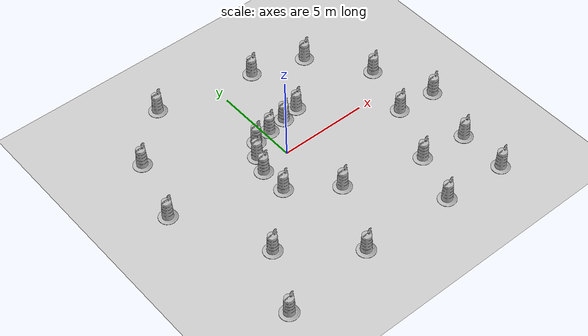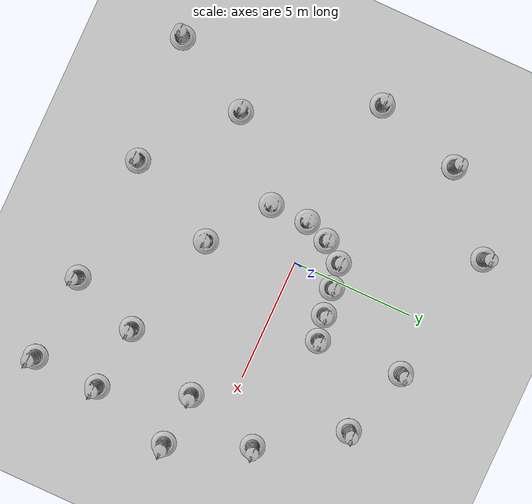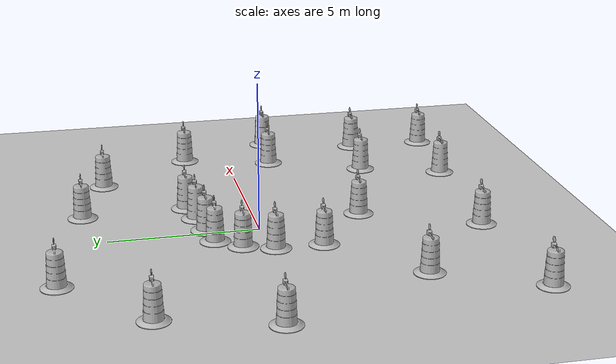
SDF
<sdf version="1.7">
 <world name="default">
  <light name="sun" type="directional">
   <pose>0 0 10 0 -0 0</pose>
   <diffuse>0.8 0.8 0.8 1</diffuse>
   <specular>0.2 0.2 0.2 1</specular>
   <attenuation>
    <range>1000</range>
    <constant>0.9</constant>
    <linear>0.01</linear>
    <quadratic>0.001</quadratic>
   </attenuation>
   <direction>-0.5 0.1 -0.9</direction>
   <spot><inner_angle>0</inner_angle><outer_angle>0</outer_angle><falloff>0</falloff></spot>
  </light>
  <model name="ground_plane">
   <static>1</static>
   <link name="link">
    <collision name="collision">
     <geometry><plane><normal>0 0 1</normal><size>100 100</size></plane></geometry>
     <surface>
      <contact><collide_bitmask>65535</collide_bitmask></contact>
      <friction><ode><mu>100</mu><mu2>50</mu2></ode></friction>
     </surface>
    </collision>
    <visual name="visual">
     <cast_shadows>0</cast_shadows>
     <geometry><plane><normal>0 0 1</normal><size>100 100</size></plane></geometry>
     <material>
      <script><uri>file://media/materials/scripts/gazebo.material</uri><name>Gazebo/Grey</name></script>
     </material>
    </visual>
   </link>
  </model>
  <gravity>0 0 -9.8</gravity>
  <magnetic_field>6e-06 2.3e-05 -4.2e-05</magnetic_field>
  <atmosphere type="adiabatic"/>
  <physics type="ode">
   <max_step_size>0.001</max_step_size>
   <real_time_factor>1</real_time_factor>
   <real_time_update_rate>1000</real_time_update_rate>
  </physics>
  <scene><ambient>0.4 0.4 0.4 1</ambient><background>0.7 0.7 0.7 1</background><shadows>1</shadows></scene>
  <audio><device>default</device></audio>
  <spherical_coordinates>
   <surface_model>EARTH_WGS84</surface_model>
   <latitude_deg>0</latitude_deg>
   <longitude_deg>0</longitude_deg>
   <elevation>0</elevation>
   <heading_deg>0</heading_deg>
  </spherical_coordinates>
  <model name="Construction Barrel">
   <link name="link">
    <inertial>
     <pose>0 0 0.4 0 -0 0</pose>
     <mass>500</mass>
     <inertia><ixx>51.2096</ixx><iyy>51.2096</iyy><izz>25</izz><ixy>0</ixy><ixz>0</ixz><iyz>0</iyz></inertia>
    </inertial>
    <collision name="collision">
     <geometry><mesh><uri>model://construction_barrel/meshes/construction_barrel.dae</uri></mesh></geometry>
    </collision>
    <visual name="visual">
     <geometry><mesh><uri>model://construction_barrel/meshes/construction_barrel.dae</uri></mesh></geometry>
    </visual>
   </link>
   <pose>-0.710863 1.58778 -2e-06 7e-06 -4e-06 -0.074436</pose>
  </model>
  <model name="Construction Barrel_0">
   <link name="link">
    <inertial>
     <pose>0 0 0.4 0 -0 0</pose>
     <mass>500</mass>
     <inertia><ixx>51.2096</ixx><iyy>51.2096</iyy><izz>25</izz><ixy>0</ixy><ixz>0</ixz><iyz>0</iyz></inertia>
    </inertial>
    <collision name="collision">
     <geometry><mesh><uri>model://construction_barrel/meshes/construction_barrel.dae</uri></mesh></geometry>
    </collision>
    <visual name="visual">
     <geometry><mesh><uri>model://construction_barrel/meshes/construction_barrel.dae</uri></mesh></geometry>
    </visual>
   </link>
   <pose>0.292065 1.75063 -5e-06 1e-06 -1.2e-05 0.00801</pose>
  </model>
  <model name="Construction Barrel_1">
   <link name="link">
    <inertial>
     <pose>0 0 0.4 0 -0 0</pose>
     <mass>500</mass>
     <inertia><ixx>51.2096</ixx><iyy>51.2096</iyy><izz>25</izz><ixy>0</ixy><ixz>0</ixz><iyz>0</iyz></inertia>
    </inertial>
    <collision name="collision">
     <geometry><mesh><uri>model://construction_barrel/meshes/construction_barrel.dae</uri></mesh></geometry>
    </collision>
    <visual name="visual">
     <geometry><mesh><uri>model://construction_barrel/meshes/construction_barrel.dae</uri></mesh></geometry>
    </visual>
   </link>
   <pose>1.39934 1.91592 1e-06 3e-06 2e-06 -3.1e-05</pose>
  </model>
  <model name="Construction Barrel_2">
   <link name="link">
    <inertial>
     <pose>0 0 0.4 0 -0 0</pose>
     <mass>500</mass>
     <inertia><ixx>51.2096</ixx><iyy>51.2096</iyy><izz>25</izz><ixy>0</ixy><ixz>0</ixz><iyz>0</iyz></inertia>
    </inertial>
    <collision name="collision">
     <geometry><mesh><uri>model://construction_barrel/meshes/construction_barrel.dae</uri></mesh></geometry>
    </collision>
    <visual name="visual">
     <geometry><mesh><uri>model://construction_barrel/meshes/construction_barrel.dae</uri></mesh></geometry>
    </visual>
   </link>
   <pose>2.42496 2.12608 1e-06 3e-06 2e-06 -2.9e-05</pose>
  </model>
  <model name="Construction Barrel_3">
   <link name="link">
    <inertial>
     <pose>0 0 0.4 0 -0 0</pose>
     <mass>500</mass>
     <inertia><ixx>51.2096</ixx><iyy>51.2096</iyy><izz>25</izz><ixy>0</ixy><ixz>0</ixz><iyz>0</iyz></inertia>
    </inertial>
    <collision name="collision">
     <geometry><mesh><uri>model://construction_barrel/meshes/construction_barrel.dae</uri></mesh></geometry>
    </collision>
    <visual name="visual">
     <geometry><mesh><uri>model://construction_barrel/meshes/construction_barrel.dae</uri></mesh></geometry>
    </visual>
   </link>
   <pose>-1.70397 -1.80411 1e-06 3e-06 2e-06 -2.8e-05</pose>
  </model>
  <model name="Construction Barrel_4">
   <link name="link">
    <inertial>
     <pose>0 0 0.4 0 -0 0</pose>
     <mass>500</mass>
     <inertia><ixx>51.2096</ixx><iyy>51.2096</iyy><izz>25</izz><ixy>0</ixy><ixz>0</ixz><iyz>0</iyz></inertia>
    </inertial>
    <collision name="collision">
     <geometry><mesh><uri>model://construction_barrel/meshes/construction_barrel.dae</uri></mesh></geometry>
    </collision>
    <visual name="visual">
     <geometry><mesh><uri>model://construction_barrel/meshes/construction_barrel.dae</uri></mesh></geometry>
    </visual>
   </link>
   <pose>-1.69425 -0.226167 1e-06 3e-06 2e-06 -2.7e-05</pose>
  </model>
  <model name="Construction Barrel_5">
   <link name="link">
    <inertial>
     <pose>0 0 0.4 0 -0 0</pose>
     <mass>500</mass>
     <inertia><ixx>51.2096</ixx><iyy>51.2096</iyy><izz>25</izz><ixy>0</ixy><ixz>0</ixz><iyz>0</iyz></inertia>
    </inertial>
    <collision name="collision">
     <geometry><mesh><uri>model://construction_barrel/meshes/construction_barrel.dae</uri></mesh></geometry>
    </collision>
    <visual name="visual">
     <geometry><mesh><uri>model://construction_barrel/meshes/construction_barrel.dae</uri></mesh></geometry>
    </visual>
   </link>
   <pose>-1.31793 0.774376 1e-06 3e-06 2e-06 -2.6e-05</pose>
  </model>
  <model name="Construction Barrel_6">
   <link name="link">
    <inertial>
     <pose>0 0 0.4 0 -0 0</pose>
     <mass>500</mass>
     <inertia><ixx>51.2096</ixx><iyy>51.2096</iyy><izz>25</izz><ixy>0</ixy><ixz>0</ixz><iyz>0</iyz></inertia>
    </inertial>
    <collision name="collision">
     <geometry><mesh><uri>model://construction_barrel/meshes/construction_barrel.dae</uri></mesh></geometry>
    </collision>
    <visual name="visual">
     <geometry><mesh><uri>model://construction_barrel/meshes/construction_barrel.dae</uri></mesh></geometry>
    </visual>
   </link>
   <pose>5.08218 -4.7884 1e-06 3e-06 2e-06 -2.5e-05</pose>
  </model>
  <model name="Construction Barrel_7">
   <link name="link">
    <inertial>
     <pose>0 0 0.4 0 -0 0</pose>
     <mass>500</mass>
     <inertia><ixx>51.2096</ixx><iyy>51.2096</iyy><izz>25</izz><ixy>0</ixy><ixz>0</ixz><iyz>0</iyz></inertia>
    </inertial>
    <collision name="collision">
     <geometry><mesh><uri>model://construction_barrel/meshes/construction_barrel.dae</uri></mesh></geometry>
    </collision>
    <visual name="visual">
     <geometry><mesh><uri>model://construction_barrel/meshes/construction_barrel.dae</uri></mesh></geometry>
    </visual>
   </link>
   <pose>-7.13536 0.554218 1e-06 3e-06 2e-06 -2.3e-05</pose>
  </model>
  <model name="Construction Barrel_8">
   <link name="link">
    <inertial>
     <pose>0 0 0.4 0 -0 0</pose>
     <mass>500</mass>
     <inertia><ixx>51.2096</ixx><iyy>51.2096</iyy><izz>25</izz><ixy>0</ixy><ixz>0</ixz><iyz>0</iyz></inertia>
    </inertial>
    <collision name="collision">
     <geometry><mesh><uri>model://construction_barrel/meshes/construction_barrel.dae</uri></mesh></geometry>
    </collision>
    <visual name="visual">
     <geometry><mesh><uri>model://construction_barrel/meshes/construction_barrel.dae</uri></mesh></geometry>
    </visual>
   </link>
   <pose>2.24638 5.6618 1e-06 3e-06 2e-06 -2.2e-05</pose>
  </model>
  <model name="Construction Barrel_9">
   <link name="link">
    <inertial>
     <pose>0 0 0.4 0 -0 0</pose>
     <mass>500</mass>
     <inertia><ixx>51.2096</ixx><iyy>51.2096</iyy><izz>25</izz><ixy>0</ixy><ixz>0</ixz><iyz>0</iyz></inertia>
    </inertial>
    <collision name="collision">
     <geometry><mesh><uri>model://construction_barrel/meshes/construction_barrel.dae</uri></mesh></geometry>
    </collision>
    <visual name="visual">
     <geometry><mesh><uri>model://construction_barrel/meshes/construction_barrel.dae</uri></mesh></geometry>
    </visual>
   </link>
   <pose>-3.24194 6.74828 1e-06 3e-06 2e-06 -2.1e-05</pose>
  </model>
  <model name="Construction Barrel_10">
   <link name="link">
    <inertial>
     <pose>0 0 0.4 0 -0 0</pose>
     <mass>500</mass>
     <inertia><ixx>51.2096</ixx><iyy>51.2096</iyy><izz>25</izz><ixy>0</ixy><ixz>0</ixz><iyz>0</iyz></inertia>
    </inertial>
    <collision name="collision">
     <geometry><mesh><uri>model://construction_barrel/meshes/construction_barrel.dae</uri></mesh></geometry>
    </collision>
    <visual name="visual">
     <geometry><mesh><uri>model://construction_barrel/meshes/construction_barrel.dae</uri></mesh></geometry>
    </visual>
   </link>
   <pose>-6.09674 4.16715 1e-06 3e-06 2e-06 -2e-05</pose>
  </model>
  <model name="Construction Barrel_11">
   <link name="link">
    <inertial>
     <pose>0 0 0.4 0 -0 0</pose>
     <mass>500</mass>
     <inertia><ixx>51.2096</ixx><iyy>51.2096</iyy><izz>25</izz><ixy>0</ixy><ixz>0</ixz><iyz>0</iyz></inertia>
    </inertial>
    <collision name="collision">
     <geometry><mesh><uri>model://construction_barrel/meshes/construction_barrel.dae</uri></mesh></geometry>
    </collision>
    <visual name="visual">
     <geometry><mesh><uri>model://construction_barrel/meshes/construction_barrel.dae</uri></mesh></geometry>
    </visual>
   </link>
   <pose>-1.09798 -7.35449 -0 0 0 -1.8e-05</pose>
  </model>
  <model name="Construction Barrel_12">
   <link name="link">
    <inertial>
     <pose>0 0 0.4 0 -0 0</pose>
     <mass>500</mass>
     <inertia><ixx>51.2096</ixx><iyy>51.2096</iyy><izz>25</izz><ixy>0</ixy><ixz>0</ixz><iyz>0</iyz></inertia>
    </inertial>
    <collision name="collision">
     <geometry><mesh><uri>model://construction_barrel/meshes/construction_barrel.dae</uri></mesh></geometry>
    </collision>
    <visual name="visual">
     <geometry><mesh><uri>model://construction_barrel/meshes/construction_barrel.dae</uri></mesh></geometry>
    </visual>
   </link>
   <pose>-4.56165 -4.45317 -2e-06 8e-06 -4e-06 -1.7e-05</pose>
  </model>
  <model name="Construction Barrel_13">
   <link name="link">
    <inertial>
     <pose>0 0 0.4 0 -0 0</pose>
     <mass>500</mass>
     <inertia><ixx>51.2096</ixx><iyy>51.2096</iyy><izz>25</izz><ixy>0</ixy><ixz>0</ixz><iyz>0</iyz></inertia>
    </inertial>
    <collision name="collision">
     <geometry><mesh><uri>model://construction_barrel/meshes/construction_barrel.dae</uri></mesh></geometry>
    </collision>
    <visual name="visual">
     <geometry><mesh><uri>model://construction_barrel/meshes/construction_barrel.dae</uri></mesh></geometry>
    </visual>
   </link>
   <pose>6.47996 -1.55198 -1e-06 3e-06 7e-06 -1.5e-05</pose>
  </model>
  <model name="Construction Barrel_14">
   <link name="link">
    <inertial>
     <pose>0 0 0.4 0 -0 0</pose>
     <mass>500</mass>
     <inertia><ixx>51.2096</ixx><iyy>51.2096</iyy><izz>25</izz><ixy>0</ixy><ixz>0</ixz><iyz>0</iyz></inertia>
    </inertial>
    <collision name="collision">
     <geometry><mesh><uri>model://construction_barrel/meshes/construction_barrel.dae</uri></mesh></geometry>
    </collision>
    <visual name="visual">
     <geometry><mesh><uri>model://construction_barrel/meshes/construction_barrel.dae</uri></mesh></geometry>
    </visual>
   </link>
   <pose>5.1813 4.72994 0 0 0 -1.5e-05</pose>
  </model>
  <model name="Construction Barrel_15">
   <link name="link">
    <inertial>
     <pose>0 0 0.4 0 -0 0</pose>
     <mass>500</mass>
     <inertia><ixx>51.2096</ixx><iyy>51.2096</iyy><izz>25</izz><ixy>0</ixy><ixz>0</ixz><iyz>0</iyz></inertia>
    </inertial>
    <collision name="collision">
     <geometry><mesh><uri>model://construction_barrel/meshes/construction_barrel.dae</uri></mesh></geometry>
    </collision>
    <visual name="visual">
     <geometry><mesh><uri>model://construction_barrel/meshes/construction_barrel.dae</uri></mesh></geometry>
    </visual>
   </link>
   <pose>4.11272 -7.577 -0 1e-06 -1e-06 -1.2e-05</pose>
  </model>
  <model name="Construction Barrel_16">
   <link name="link">
    <inertial>
     <pose>0 0 0.4 0 -0 0</pose>
     <mass>500</mass>
     <inertia><ixx>51.2096</ixx><iyy>51.2096</iyy><izz>25</izz><ixy>0</ixy><ixz>0</ixz><iyz>0</iyz></inertia>
    </inertial>
    <collision name="collision">
     <geometry><mesh><uri>model://construction_barrel/meshes/construction_barrel.dae</uri></mesh></geometry>
    </collision>
    <visual name="visual">
     <geometry><mesh><uri>model://construction_barrel/meshes/construction_barrel.dae</uri></mesh></geometry>
    </visual>
   </link>
   <pose>7.73491 -5.08578 -1e-06 0 5e-06 -1e-05</pose>
  </model>
  <model name="Construction Barrel_17">
   <link name="link">
    <inertial>
     <pose>0 0 0.4 0 -0 0</pose>
     <mass>500</mass>
     <inertia><ixx>51.2096</ixx><iyy>51.2096</iyy><izz>25</izz><ixy>0</ixy><ixz>0</ixz><iyz>0</iyz></inertia>
    </inertial>
    <collision name="collision">
     <geometry><mesh><uri>model://construction_barrel/meshes/construction_barrel.dae</uri></mesh></geometry>
    </collision>
    <visual name="visual">
     <geometry><mesh><uri>model://construction_barrel/meshes/construction_barrel.dae</uri></mesh></geometry>
    </visual>
   </link>
   <pose>7.33962 1.51976 -2e-06 -0 7e-06 -8e-06</pose>
  </model>
  <model name="Construction Barrel_18">
   <link name="link">
    <inertial>
     <pose>0 0 0.4 0 -0 0</pose>
     <mass>500</mass>
     <inertia><ixx>51.2096</ixx><iyy>51.2096</iyy><izz>25</izz><ixy>0</ixy><ixz>0</ixz><iyz>0</iyz></inertia>
    </inertial>
    <collision name="collision">
     <geometry><mesh><uri>model://construction_barrel/meshes/construction_barrel.dae</uri></mesh></geometry>
    </collision>
    <visual name="visual">
     <geometry><mesh><uri>model://construction_barrel/meshes/construction_barrel.dae</uri></mesh></geometry>
    </visual>
   </link>
   <pose>0.689482 -3.57052 -1e-06 3e-06 1e-05 -7e-06</pose>
  </model>
  <model name="Construction Barrel_19">
   <link name="link">
    <inertial>
     <pose>0 0 0.4 0 -0 0</pose>
     <mass>500</mass>
     <inertia><ixx>51.2096</ixx><iyy>51.2096</iyy><izz>25</izz><ixy>0</ixy><ixz>0</ixz><iyz>0</iyz></inertia>
    </inertial>
    <collision name="collision">
     <geometry><mesh><uri>model://construction_barrel/meshes/construction_barrel.dae</uri></mesh></geometry>
    </collision>
    <visual name="visual">
     <geometry><mesh><uri>model://construction_barrel/meshes/construction_barrel.dae</uri></mesh></geometry>
    </visual>
   </link>
   <pose>7.67638 -7.81041 1e-06 2e-06 3e-06 -6e-06</pose>
  </model>
  <model name="Construction Barrel_20">
   <link name="link">
    <inertial>
     <pose>0 0 0.4 0 -0 0</pose>
     <mass>500</mass>
     <inertia><ixx>51.2096</ixx><iyy>51.2096</iyy><izz>25</izz><ixy>0</ixy><ixz>0</ixz><iyz>0</iyz></inertia>
    </inertial>
    <collision name="collision">
     <geometry><mesh><uri>model://construction_barrel/meshes/construction_barrel.dae</uri></mesh></geometry>
    </collision>
    <visual name="visual">
     <geometry><mesh><uri>model://construction_barrel/meshes/construction_barrel.dae</uri></mesh></geometry>
    </visual>
   </link>
   <pose>8.69747 -1.73898 0 0 0 -3e-06</pose>
  </model>
  <model name="Construction Barrel_21">
   <link name="link">
    <inertial>
     <pose>0 0 0.4 0 -0 0</pose>
     <mass>500</mass>
     <inertia><ixx>51.2096</ixx><iyy>51.2096</iyy><izz>25</izz><ixy>0</ixy><ixz>0</ixz><iyz>0</iyz></inertia>
    </inertial>
    <collision name="collision">
     <geometry><mesh><uri>model://construction_barrel/meshes/construction_barrel.dae</uri></mesh></geometry>
    </collision>
    <visual name="visual">
     <geometry><mesh><uri>model://construction_barrel/meshes/construction_barrel.dae</uri></mesh></geometry>
    </visual>
   </link>
   <pose>-6.28421 -7.7722 -1e-06 3e-06 -2e-06 -2e-06</pose>
  </model>
 </world>
</sdf>
